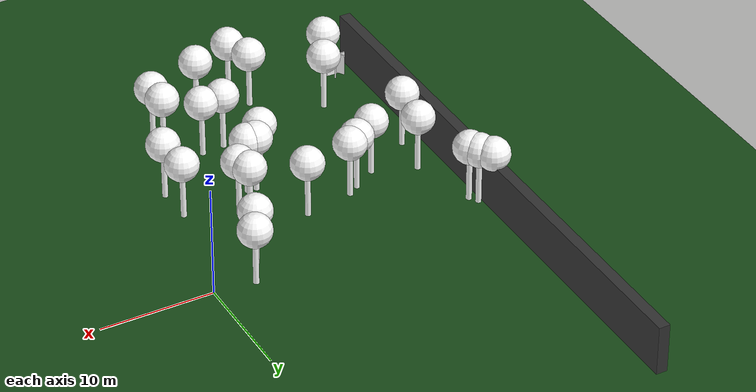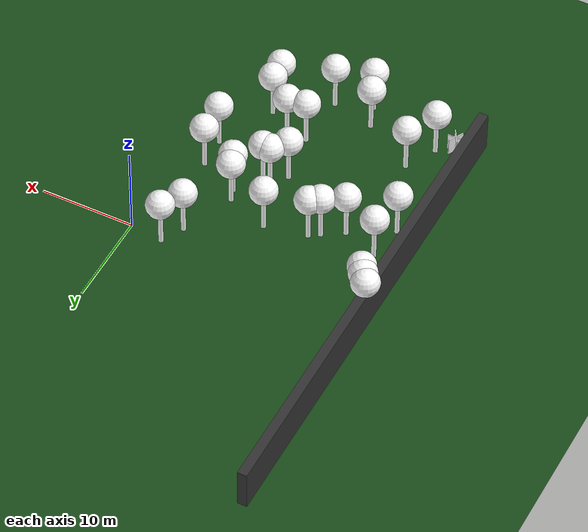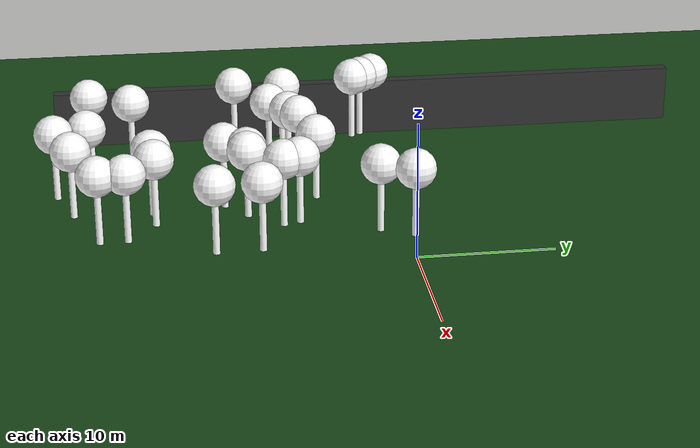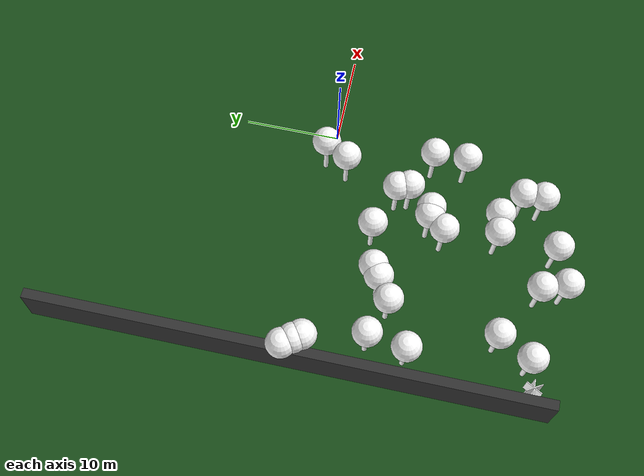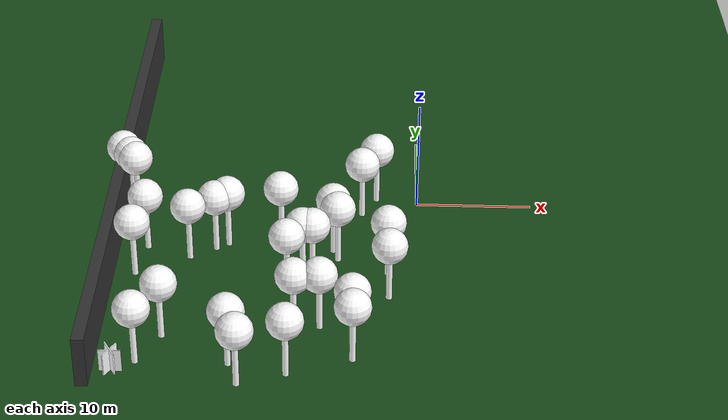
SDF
<sdf version="1.8">
 <world name="forest_world">
  <model name="fire_4">
   <pose>-23.95 -23.95 1.00 0 0 0.00</pose>
   <static>true</static>
   <link name="fire_link">
    <visual name="fire_4_fire_main_0">
     <geometry><box><size>1.80 0.10 2.00</size></box></geometry>
     <material>
      <ambient>0.7 0.35 0.0 1</ambient>
      <diffuse>1 1 1 1</diffuse>
      <specular>0 0 0 1</specular>
      <emissive>0 0 0 1</emissive>
      <pbr>
       <metal><albedo_map>textures/fire.png</albedo_map><metalness>0.0</metalness><roughness>0.6</roughness></metal>
      </pbr>
     </material>
     <transparency>0.0</transparency>
     <cast_shadows>false</cast_shadows>
    </visual>
    <visual name="fire_4_fire_60_1">
     <pose>0.00 0.00 0.10 0 0 1.05</pose>
     <geometry><box><size>1.80 0.10 2.00</size></box></geometry>
     <material>
      <ambient>0.7 0.35 0.0 1</ambient>
      <diffuse>1 1 1 1</diffuse>
      <specular>0 0 0 1</specular>
      <emissive>0 0 0 1</emissive>
      <pbr>
       <metal><albedo_map>textures/fire.png</albedo_map><metalness>0.0</metalness><roughness>0.6</roughness></metal>
      </pbr>
     </material>
     <transparency>0.0</transparency>
     <cast_shadows>false</cast_shadows>
    </visual>
    <visual name="fire_4_fire_120_2">
     <pose>0.00 0.00 0.20 0 0 2.09</pose>
     <geometry><box><size>1.80 0.10 2.00</size></box></geometry>
     <material>
      <ambient>0.7 0.35 0.0 1</ambient>
      <diffuse>1 1 1 1</diffuse>
      <specular>0 0 0 1</specular>
      <emissive>0 0 0 1</emissive>
      <pbr>
       <metal><albedo_map>textures/fire.png</albedo_map><metalness>0.0</metalness><roughness>0.6</roughness></metal>
      </pbr>
     </material>
     <transparency>0.0</transparency>
     <cast_shadows>false</cast_shadows>
    </visual>
    <light type="point" name="fire_4_light_0">
     <pose>0.40 0.00 0.50 0 0 0</pose>
     <diffuse>1.0 0.7 0.3 1</diffuse>
     <specular>1.0 0.8 0.3 1</specular>
     <intensity>2</intensity>
     <attenuation>
      <range>2</range>
      <constant>0.1</constant>
      <linear>0.05</linear>
      <quadratic>0.02</quadratic>
     </attenuation>
     <cast_shadows>false</cast_shadows>
    </light>
    <light type="point" name="fire_4_light_1">
     <pose>-0.20 0.35 0.50 0 0 0</pose>
     <diffuse>1.0 0.7 0.3 1</diffuse>
     <specular>1.0 0.8 0.3 1</specular>
     <intensity>2</intensity>
     <attenuation>
      <range>2</range>
      <constant>0.1</constant>
      <linear>0.05</linear>
      <quadratic>0.02</quadratic>
     </attenuation>
     <cast_shadows>false</cast_shadows>
    </light>
    <light type="point" name="fire_4_light_2">
     <pose>-0.20 -0.35 0.50 0 0 0</pose>
     <diffuse>1.0 0.7 0.3 1</diffuse>
     <specular>1.0 0.8 0.3 1</specular>
     <intensity>2</intensity>
     <attenuation>
      <range>2</range>
      <constant>0.1</constant>
      <linear>0.05</linear>
      <quadratic>0.02</quadratic>
     </attenuation>
     <cast_shadows>false</cast_shadows>
    </light>
   </link>
   <plugin filename="libignition-gazebo-pose-publisher-system.so" name="ignition::gazebo::systems::PosePublisher">
    <frame_id>world</frame_id>
    <publish_link_pose>true</publish_link_pose>
    <use_pose_vector_msg>true</use_pose_vector_msg>
    <static_publisher>true</static_publisher>
    <static_update_frequency>1</static_update_frequency>
   </plugin>
  </model>
  <model name="tree_simple448">
   <static>1</static>
   <link name="link">
    <pose>0 0 0.1 0 -0 0</pose>
    <collision name="collision_trunk">
     <pose>0 0 2 0 -0 0</pose>
     <geometry><cylinder><radius>0.25</radius><length>4</length></cylinder></geometry>
    </collision>
    <collision name="collision_treetop">
     <pose>0 0 5.2 0 -0 0</pose>
     <geometry><sphere><radius>1.5</radius></sphere></geometry>
    </collision>
    <visual name="trunk">
     <pose>0 0 2 0 -0 0</pose>
     <geometry><cylinder><radius>0.25</radius><length>4</length></cylinder></geometry>
     <material>
      <ambient>0.5 0.5 0.5 1</ambient>
      <diffuse>1.0 1.0 1.0 1</diffuse>
      <specular>0.0 0.0 0.0 1</specular>
      <pbr>
       <metal>
        <albedo_map>../worlds/textures/tree_simple_trunk.jpg</albedo_map>
        <metalness>0.0</metalness>
        <roughness>0.8</roughness>
       </metal>
      </pbr>
     </material>
    </visual>
    <visual name="treetop">
     <pose>0 0 5.2 0 -0 0</pose>
     <geometry><sphere><radius>1.5</radius></sphere></geometry>
     <material>
      <ambient>0.5 0.5 0.5 1</ambient>
      <diffuse>1.0 1.0 1.0 1</diffuse>
      <specular>0.0 0.0 0.0 1</specular>
      <pbr>
       <metal>
        <albedo_map>../worlds/textures/tree_simple_treetop.jpg</albedo_map>
        <metalness>0.0</metalness>
        <roughness>0.9</roughness>
       </metal>
      </pbr>
     </material>
    </visual>
   </link>
   <pose>-24.5519753109 -1.42546954192 0 0 -0 0</pose>
  </model>
  <model name="tree_simple418">
   <static>1</static>
   <link name="link">
    <pose>0 0 0.1 0 -0 0</pose>
    <collision name="collision_trunk">
     <pose>0 0 2 0 -0 0</pose>
     <geometry><cylinder><radius>0.25</radius><length>4</length></cylinder></geometry>
    </collision>
    <collision name="collision_treetop">
     <pose>0 0 5.2 0 -0 0</pose>
     <geometry><sphere><radius>1.5</radius></sphere></geometry>
    </collision>
    <visual name="trunk">
     <pose>0 0 2 0 -0 0</pose>
     <geometry><cylinder><radius>0.25</radius><length>4</length></cylinder></geometry>
     <material>
      <ambient>0.5 0.5 0.5 1</ambient>
      <diffuse>1.0 1.0 1.0 1</diffuse>
      <specular>0.0 0.0 0.0 1</specular>
      <pbr>
       <metal>
        <albedo_map>../worlds/textures/tree_simple_trunk.jpg</albedo_map>
        <metalness>0.0</metalness>
        <roughness>0.8</roughness>
       </metal>
      </pbr>
     </material>
    </visual>
    <visual name="treetop">
     <pose>0 0 5.2 0 -0 0</pose>
     <geometry><sphere><radius>1.5</radius></sphere></geometry>
     <material>
      <ambient>0.5 0.5 0.5 1</ambient>
      <diffuse>1.0 1.0 1.0 1</diffuse>
      <specular>0.0 0.0 0.0 1</specular>
      <pbr>
       <metal>
        <albedo_map>../worlds/textures/tree_simple_treetop.jpg</albedo_map>
        <metalness>0.0</metalness>
        <roughness>0.9</roughness>
       </metal>
      </pbr>
     </material>
    </visual>
   </link>
   <pose>-22.9841604277 -7.39292719752 0 0 -0 0</pose>
  </model>
  <model name="tree_simple415">
   <static>1</static>
   <link name="link">
    <pose>0 0 0.1 0 -0 0</pose>
    <collision name="collision_trunk">
     <pose>0 0 2 0 -0 0</pose>
     <geometry><cylinder><radius>0.25</radius><length>4</length></cylinder></geometry>
    </collision>
    <collision name="collision_treetop">
     <pose>0 0 5.2 0 -0 0</pose>
     <geometry><sphere><radius>1.5</radius></sphere></geometry>
    </collision>
    <visual name="trunk">
     <pose>0 0 2 0 -0 0</pose>
     <geometry><cylinder><radius>0.25</radius><length>4</length></cylinder></geometry>
     <material>
      <ambient>0.5 0.5 0.5 1</ambient>
      <diffuse>1.0 1.0 1.0 1</diffuse>
      <specular>0.0 0.0 0.0 1</specular>
      <pbr>
       <metal>
        <albedo_map>../worlds/textures/tree_simple_trunk.jpg</albedo_map>
        <metalness>0.0</metalness>
        <roughness>0.8</roughness>
       </metal>
      </pbr>
     </material>
    </visual>
    <visual name="treetop">
     <pose>0 0 5.2 0 -0 0</pose>
     <geometry><sphere><radius>1.5</radius></sphere></geometry>
     <material>
      <ambient>0.5 0.5 0.5 1</ambient>
      <diffuse>1.0 1.0 1.0 1</diffuse>
      <specular>0.0 0.0 0.0 1</specular>
      <pbr>
       <metal>
        <albedo_map>../worlds/textures/tree_simple_treetop.jpg</albedo_map>
        <metalness>0.0</metalness>
        <roughness>0.9</roughness>
       </metal>
      </pbr>
     </material>
    </visual>
   </link>
   <pose>-11.6355979465 -5.8252534874 0 0 -0 0</pose>
  </model>
  <model name="tree_simple395">
   <static>1</static>
   <link name="link">
    <pose>0 0 0.1 0 -0 0</pose>
    <collision name="collision_trunk">
     <pose>0 0 2 0 -0 0</pose>
     <geometry><cylinder><radius>0.25</radius><length>4</length></cylinder></geometry>
    </collision>
    <collision name="collision_treetop">
     <pose>0 0 5.2 0 -0 0</pose>
     <geometry><sphere><radius>1.5</radius></sphere></geometry>
    </collision>
    <visual name="trunk">
     <pose>0 0 2 0 -0 0</pose>
     <geometry><cylinder><radius>0.25</radius><length>4</length></cylinder></geometry>
     <material>
      <ambient>0.5 0.5 0.5 1</ambient>
      <diffuse>1.0 1.0 1.0 1</diffuse>
      <specular>0.0 0.0 0.0 1</specular>
      <pbr>
       <metal>
        <albedo_map>../worlds/textures/tree_simple_trunk.jpg</albedo_map>
        <metalness>0.0</metalness>
        <roughness>0.8</roughness>
       </metal>
      </pbr>
     </material>
    </visual>
    <visual name="treetop">
     <pose>0 0 5.2 0 -0 0</pose>
     <geometry><sphere><radius>1.5</radius></sphere></geometry>
     <material>
      <ambient>0.5 0.5 0.5 1</ambient>
      <diffuse>1.0 1.0 1.0 1</diffuse>
      <specular>0.0 0.0 0.0 1</specular>
      <pbr>
       <metal>
        <albedo_map>../worlds/textures/tree_simple_treetop.jpg</albedo_map>
        <metalness>0.0</metalness>
        <roughness>0.9</roughness>
       </metal>
      </pbr>
     </material>
    </visual>
   </link>
   <pose>-14.8909068885 -23.0244241553 0 0 -0 0</pose>
  </model>
  <model name="tree_simple392">
   <static>1</static>
   <link name="link">
    <pose>0 0 0.1 0 -0 0</pose>
    <collision name="collision_trunk">
     <pose>0 0 2 0 -0 0</pose>
     <geometry><cylinder><radius>0.25</radius><length>4</length></cylinder></geometry>
    </collision>
    <collision name="collision_treetop">
     <pose>0 0 5.2 0 -0 0</pose>
     <geometry><sphere><radius>1.5</radius></sphere></geometry>
    </collision>
    <visual name="trunk">
     <pose>0 0 2 0 -0 0</pose>
     <geometry><cylinder><radius>0.25</radius><length>4</length></cylinder></geometry>
     <material>
      <ambient>0.5 0.5 0.5 1</ambient>
      <diffuse>1.0 1.0 1.0 1</diffuse>
      <specular>0.0 0.0 0.0 1</specular>
      <pbr>
       <metal>
        <albedo_map>../worlds/textures/tree_simple_trunk.jpg</albedo_map>
        <metalness>0.0</metalness>
        <roughness>0.8</roughness>
       </metal>
      </pbr>
     </material>
    </visual>
    <visual name="treetop">
     <pose>0 0 5.2 0 -0 0</pose>
     <geometry><sphere><radius>1.5</radius></sphere></geometry>
     <material>
      <ambient>0.5 0.5 0.5 1</ambient>
      <diffuse>1.0 1.0 1.0 1</diffuse>
      <specular>0.0 0.0 0.0 1</specular>
      <pbr>
       <metal>
        <albedo_map>../worlds/textures/tree_simple_treetop.jpg</albedo_map>
        <metalness>0.0</metalness>
        <roughness>0.9</roughness>
       </metal>
      </pbr>
     </material>
    </visual>
   </link>
   <pose>-2.49227665262 -10.6347787598 0 0 -0 0</pose>
  </model>
  <model name="tree_simple386">
   <static>1</static>
   <link name="link">
    <pose>0 0 0.1 0 -0 0</pose>
    <collision name="collision_trunk">
     <pose>0 0 2 0 -0 0</pose>
     <geometry><cylinder><radius>0.25</radius><length>4</length></cylinder></geometry>
    </collision>
    <collision name="collision_treetop">
     <pose>0 0 5.2 0 -0 0</pose>
     <geometry><sphere><radius>1.5</radius></sphere></geometry>
    </collision>
    <visual name="trunk">
     <pose>0 0 2 0 -0 0</pose>
     <geometry><cylinder><radius>0.25</radius><length>4</length></cylinder></geometry>
     <material>
      <ambient>0.5 0.5 0.5 1</ambient>
      <diffuse>1.0 1.0 1.0 1</diffuse>
      <specular>0.0 0.0 0.0 1</specular>
      <pbr>
       <metal>
        <albedo_map>../worlds/textures/tree_simple_trunk.jpg</albedo_map>
        <metalness>0.0</metalness>
        <roughness>0.8</roughness>
       </metal>
      </pbr>
     </material>
    </visual>
    <visual name="treetop">
     <pose>0 0 5.2 0 -0 0</pose>
     <geometry><sphere><radius>1.5</radius></sphere></geometry>
     <material>
      <ambient>0.5 0.5 0.5 1</ambient>
      <diffuse>1.0 1.0 1.0 1</diffuse>
      <specular>0.0 0.0 0.0 1</specular>
      <pbr>
       <metal>
        <albedo_map>../worlds/textures/tree_simple_treetop.jpg</albedo_map>
        <metalness>0.0</metalness>
        <roughness>0.9</roughness>
       </metal>
      </pbr>
     </material>
    </visual>
   </link>
   <pose>-19.2490777258 -8.77456979873 0 0 -0 0</pose>
  </model>
  <model name="tree_simple376">
   <static>1</static>
   <link name="link">
    <pose>0 0 0.1 0 -0 0</pose>
    <collision name="collision_trunk">
     <pose>0 0 2 0 -0 0</pose>
     <geometry><cylinder><radius>0.25</radius><length>4</length></cylinder></geometry>
    </collision>
    <collision name="collision_treetop">
     <pose>0 0 5.2 0 -0 0</pose>
     <geometry><sphere><radius>1.5</radius></sphere></geometry>
    </collision>
    <visual name="trunk">
     <pose>0 0 2 0 -0 0</pose>
     <geometry><cylinder><radius>0.25</radius><length>4</length></cylinder></geometry>
     <material>
      <ambient>0.5 0.5 0.5 1</ambient>
      <diffuse>1.0 1.0 1.0 1</diffuse>
      <specular>0.0 0.0 0.0 1</specular>
      <pbr>
       <metal>
        <albedo_map>../worlds/textures/tree_simple_trunk.jpg</albedo_map>
        <metalness>0.0</metalness>
        <roughness>0.8</roughness>
       </metal>
      </pbr>
     </material>
    </visual>
    <visual name="treetop">
     <pose>0 0 5.2 0 -0 0</pose>
     <geometry><sphere><radius>1.5</radius></sphere></geometry>
     <material>
      <ambient>0.5 0.5 0.5 1</ambient>
      <diffuse>1.0 1.0 1.0 1</diffuse>
      <specular>0.0 0.0 0.0 1</specular>
      <pbr>
       <metal>
        <albedo_map>../worlds/textures/tree_simple_treetop.jpg</albedo_map>
        <metalness>0.0</metalness>
        <roughness>0.9</roughness>
       </metal>
      </pbr>
     </material>
    </visual>
   </link>
   <pose>-3.57495660346 0.511559407044 0 0 -0 0</pose>
  </model>
  <model name="tree_simple364">
   <static>1</static>
   <link name="link">
    <pose>0 0 0.1 0 -0 0</pose>
    <collision name="collision_trunk">
     <pose>0 0 2 0 -0 0</pose>
     <geometry><cylinder><radius>0.25</radius><length>4</length></cylinder></geometry>
    </collision>
    <collision name="collision_treetop">
     <pose>0 0 5.2 0 -0 0</pose>
     <geometry><sphere><radius>1.5</radius></sphere></geometry>
    </collision>
    <visual name="trunk">
     <pose>0 0 2 0 -0 0</pose>
     <geometry><cylinder><radius>0.25</radius><length>4</length></cylinder></geometry>
     <material>
      <ambient>0.5 0.5 0.5 1</ambient>
      <diffuse>1.0 1.0 1.0 1</diffuse>
      <specular>0.0 0.0 0.0 1</specular>
      <pbr>
       <metal>
        <albedo_map>../worlds/textures/tree_simple_trunk.jpg</albedo_map>
        <metalness>0.0</metalness>
        <roughness>0.8</roughness>
       </metal>
      </pbr>
     </material>
    </visual>
    <visual name="treetop">
     <pose>0 0 5.2 0 -0 0</pose>
     <geometry><sphere><radius>1.5</radius></sphere></geometry>
     <material>
      <ambient>0.5 0.5 0.5 1</ambient>
      <diffuse>1.0 1.0 1.0 1</diffuse>
      <specular>0.0 0.0 0.0 1</specular>
      <pbr>
       <metal>
        <albedo_map>../worlds/textures/tree_simple_treetop.jpg</albedo_map>
        <metalness>0.0</metalness>
        <roughness>0.9</roughness>
       </metal>
      </pbr>
     </material>
    </visual>
   </link>
   <pose>-5.23612591395 -20.1562951187 0 0 -0 0</pose>
  </model>
  <model name="tree_simple349">
   <static>1</static>
   <link name="link">
    <pose>0 0 0.1 0 -0 0</pose>
    <collision name="collision_trunk">
     <pose>0 0 2 0 -0 0</pose>
     <geometry><cylinder><radius>0.25</radius><length>4</length></cylinder></geometry>
    </collision>
    <collision name="collision_treetop">
     <pose>0 0 5.2 0 -0 0</pose>
     <geometry><sphere><radius>1.5</radius></sphere></geometry>
    </collision>
    <visual name="trunk">
     <pose>0 0 2 0 -0 0</pose>
     <geometry><cylinder><radius>0.25</radius><length>4</length></cylinder></geometry>
     <material>
      <ambient>0.5 0.5 0.5 1</ambient>
      <diffuse>1.0 1.0 1.0 1</diffuse>
      <specular>0.0 0.0 0.0 1</specular>
      <pbr>
       <metal>
        <albedo_map>../worlds/textures/tree_simple_trunk.jpg</albedo_map>
        <metalness>0.0</metalness>
        <roughness>0.8</roughness>
       </metal>
      </pbr>
     </material>
    </visual>
    <visual name="treetop">
     <pose>0 0 5.2 0 -0 0</pose>
     <geometry><sphere><radius>1.5</radius></sphere></geometry>
     <material>
      <ambient>0.5 0.5 0.5 1</ambient>
      <diffuse>1.0 1.0 1.0 1</diffuse>
      <specular>0.0 0.0 0.0 1</specular>
      <pbr>
       <metal>
        <albedo_map>../worlds/textures/tree_simple_treetop.jpg</albedo_map>
        <metalness>0.0</metalness>
        <roughness>0.9</roughness>
       </metal>
      </pbr>
     </material>
    </visual>
   </link>
   <pose>-20.4686708935 -19.6389151122 0 0 -0 0</pose>
  </model>
  <model name="tree_simple347">
   <static>1</static>
   <link name="link">
    <pose>0 0 0.1 0 -0 0</pose>
    <collision name="collision_trunk">
     <pose>0 0 2 0 -0 0</pose>
     <geometry><cylinder><radius>0.25</radius><length>4</length></cylinder></geometry>
    </collision>
    <collision name="collision_treetop">
     <pose>0 0 5.2 0 -0 0</pose>
     <geometry><sphere><radius>1.5</radius></sphere></geometry>
    </collision>
    <visual name="trunk">
     <pose>0 0 2 0 -0 0</pose>
     <geometry><cylinder><radius>0.25</radius><length>4</length></cylinder></geometry>
     <material>
      <ambient>0.5 0.5 0.5 1</ambient>
      <diffuse>1.0 1.0 1.0 1</diffuse>
      <specular>0.0 0.0 0.0 1</specular>
      <pbr>
       <metal>
        <albedo_map>../worlds/textures/tree_simple_trunk.jpg</albedo_map>
        <metalness>0.0</metalness>
        <roughness>0.8</roughness>
       </metal>
      </pbr>
     </material>
    </visual>
    <visual name="treetop">
     <pose>0 0 5.2 0 -0 0</pose>
     <geometry><sphere><radius>1.5</radius></sphere></geometry>
     <material>
      <ambient>0.5 0.5 0.5 1</ambient>
      <diffuse>1.0 1.0 1.0 1</diffuse>
      <specular>0.0 0.0 0.0 1</specular>
      <pbr>
       <metal>
        <albedo_map>../worlds/textures/tree_simple_treetop.jpg</albedo_map>
        <metalness>0.0</metalness>
        <roughness>0.9</roughness>
       </metal>
      </pbr>
     </material>
    </visual>
   </link>
   <pose>-10.2981062424 -24.1175281228 0 0 -0 0</pose>
  </model>
  <model name="tree_simple322">
   <static>1</static>
   <link name="link">
    <pose>0 0 0.1 0 -0 0</pose>
    <collision name="collision_trunk">
     <pose>0 0 2 0 -0 0</pose>
     <geometry><cylinder><radius>0.25</radius><length>4</length></cylinder></geometry>
    </collision>
    <collision name="collision_treetop">
     <pose>0 0 5.2 0 -0 0</pose>
     <geometry><sphere><radius>1.5</radius></sphere></geometry>
    </collision>
    <visual name="trunk">
     <pose>0 0 2 0 -0 0</pose>
     <geometry><cylinder><radius>0.25</radius><length>4</length></cylinder></geometry>
     <material>
      <ambient>0.5 0.5 0.5 1</ambient>
      <diffuse>1.0 1.0 1.0 1</diffuse>
      <specular>0.0 0.0 0.0 1</specular>
      <pbr>
       <metal>
        <albedo_map>../worlds/textures/tree_simple_trunk.jpg</albedo_map>
        <metalness>0.0</metalness>
        <roughness>0.8</roughness>
       </metal>
      </pbr>
     </material>
    </visual>
    <visual name="treetop">
     <pose>0 0 5.2 0 -0 0</pose>
     <geometry><sphere><radius>1.5</radius></sphere></geometry>
     <material>
      <ambient>0.5 0.5 0.5 1</ambient>
      <diffuse>1.0 1.0 1.0 1</diffuse>
      <specular>0.0 0.0 0.0 1</specular>
      <pbr>
       <metal>
        <albedo_map>../worlds/textures/tree_simple_treetop.jpg</albedo_map>
        <metalness>0.0</metalness>
        <roughness>0.9</roughness>
       </metal>
      </pbr>
     </material>
    </visual>
   </link>
   <pose>-10.7837387112 -12.8598856653 0 0 -0 0</pose>
  </model>
  <model name="tree_simple303">
   <static>1</static>
   <link name="link">
    <pose>0 0 0.1 0 -0 0</pose>
    <collision name="collision_trunk">
     <pose>0 0 2 0 -0 0</pose>
     <geometry><cylinder><radius>0.25</radius><length>4</length></cylinder></geometry>
    </collision>
    <collision name="collision_treetop">
     <pose>0 0 5.2 0 -0 0</pose>
     <geometry><sphere><radius>1.5</radius></sphere></geometry>
    </collision>
    <visual name="trunk">
     <pose>0 0 2 0 -0 0</pose>
     <geometry><cylinder><radius>0.25</radius><length>4</length></cylinder></geometry>
     <material>
      <ambient>0.5 0.5 0.5 1</ambient>
      <diffuse>1.0 1.0 1.0 1</diffuse>
      <specular>0.0 0.0 0.0 1</specular>
      <pbr>
       <metal>
        <albedo_map>../worlds/textures/tree_simple_trunk.jpg</albedo_map>
        <metalness>0.0</metalness>
        <roughness>0.8</roughness>
       </metal>
      </pbr>
     </material>
    </visual>
    <visual name="treetop">
     <pose>0 0 5.2 0 -0 0</pose>
     <geometry><sphere><radius>1.5</radius></sphere></geometry>
     <material>
      <ambient>0.5 0.5 0.5 1</ambient>
      <diffuse>1.0 1.0 1.0 1</diffuse>
      <specular>0.0 0.0 0.0 1</specular>
      <pbr>
       <metal>
        <albedo_map>../worlds/textures/tree_simple_treetop.jpg</albedo_map>
        <metalness>0.0</metalness>
        <roughness>0.9</roughness>
       </metal>
      </pbr>
     </material>
    </visual>
   </link>
   <pose>-9.56094886719 -11.2139048457 0 0 -0 0</pose>
  </model>
  <model name="tree_simple279">
   <static>1</static>
   <link name="link">
    <pose>0 0 0.1 0 -0 0</pose>
    <collision name="collision_trunk">
     <pose>0 0 2 0 -0 0</pose>
     <geometry><cylinder><radius>0.25</radius><length>4</length></cylinder></geometry>
    </collision>
    <collision name="collision_treetop">
     <pose>0 0 5.2 0 -0 0</pose>
     <geometry><sphere><radius>1.5</radius></sphere></geometry>
    </collision>
    <visual name="trunk">
     <pose>0 0 2 0 -0 0</pose>
     <geometry><cylinder><radius>0.25</radius><length>4</length></cylinder></geometry>
     <material>
      <ambient>0.5 0.5 0.5 1</ambient>
      <diffuse>1.0 1.0 1.0 1</diffuse>
      <specular>0.0 0.0 0.0 1</specular>
      <pbr>
       <metal>
        <albedo_map>../worlds/textures/tree_simple_trunk.jpg</albedo_map>
        <metalness>0.0</metalness>
        <roughness>0.8</roughness>
       </metal>
      </pbr>
     </material>
    </visual>
    <visual name="treetop">
     <pose>0 0 5.2 0 -0 0</pose>
     <geometry><sphere><radius>1.5</radius></sphere></geometry>
     <material>
      <ambient>0.5 0.5 0.5 1</ambient>
      <diffuse>1.0 1.0 1.0 1</diffuse>
      <specular>0.0 0.0 0.0 1</specular>
      <pbr>
       <metal>
        <albedo_map>../worlds/textures/tree_simple_treetop.jpg</albedo_map>
        <metalness>0.0</metalness>
        <roughness>0.9</roughness>
       </metal>
      </pbr>
     </material>
    </visual>
   </link>
   <pose>-25.0449823603 -0.682470499347 0 0 -0 0</pose>
  </model>
  <model name="tree_simple268">
   <static>1</static>
   <link name="link">
    <pose>0 0 0.1 0 -0 0</pose>
    <collision name="collision_trunk">
     <pose>0 0 2 0 -0 0</pose>
     <geometry><cylinder><radius>0.25</radius><length>4</length></cylinder></geometry>
    </collision>
    <collision name="collision_treetop">
     <pose>0 0 5.2 0 -0 0</pose>
     <geometry><sphere><radius>1.5</radius></sphere></geometry>
    </collision>
    <visual name="trunk">
     <pose>0 0 2 0 -0 0</pose>
     <geometry><cylinder><radius>0.25</radius><length>4</length></cylinder></geometry>
     <material>
      <ambient>0.5 0.5 0.5 1</ambient>
      <diffuse>1.0 1.0 1.0 1</diffuse>
      <specular>0.0 0.0 0.0 1</specular>
      <pbr>
       <metal>
        <albedo_map>../worlds/textures/tree_simple_trunk.jpg</albedo_map>
        <metalness>0.0</metalness>
        <roughness>0.8</roughness>
       </metal>
      </pbr>
     </material>
    </visual>
    <visual name="treetop">
     <pose>0 0 5.2 0 -0 0</pose>
     <geometry><sphere><radius>1.5</radius></sphere></geometry>
     <material>
      <ambient>0.5 0.5 0.5 1</ambient>
      <diffuse>1.0 1.0 1.0 1</diffuse>
      <specular>0.0 0.0 0.0 1</specular>
      <pbr>
       <metal>
        <albedo_map>../worlds/textures/tree_simple_treetop.jpg</albedo_map>
        <metalness>0.0</metalness>
        <roughness>0.9</roughness>
       </metal>
      </pbr>
     </material>
    </visual>
   </link>
   <pose>-9.9717965144 -18.2645258901 0 0 -0 0</pose>
  </model>
  <model name="tree_simple253">
   <static>1</static>
   <link name="link">
    <pose>0 0 0.1 0 -0 0</pose>
    <collision name="collision_trunk">
     <pose>0 0 2 0 -0 0</pose>
     <geometry><cylinder><radius>0.25</radius><length>4</length></cylinder></geometry>
    </collision>
    <collision name="collision_treetop">
     <pose>0 0 5.2 0 -0 0</pose>
     <geometry><sphere><radius>1.5</radius></sphere></geometry>
    </collision>
    <visual name="trunk">
     <pose>0 0 2 0 -0 0</pose>
     <geometry><cylinder><radius>0.25</radius><length>4</length></cylinder></geometry>
     <material>
      <ambient>0.5 0.5 0.5 1</ambient>
      <diffuse>1.0 1.0 1.0 1</diffuse>
      <specular>0.0 0.0 0.0 1</specular>
      <pbr>
       <metal>
        <albedo_map>../worlds/textures/tree_simple_trunk.jpg</albedo_map>
        <metalness>0.0</metalness>
        <roughness>0.8</roughness>
       </metal>
      </pbr>
     </material>
    </visual>
    <visual name="treetop">
     <pose>0 0 5.2 0 -0 0</pose>
     <geometry><sphere><radius>1.5</radius></sphere></geometry>
     <material>
      <ambient>0.5 0.5 0.5 1</ambient>
      <diffuse>1.0 1.0 1.0 1</diffuse>
      <specular>0.0 0.0 0.0 1</specular>
      <pbr>
       <metal>
        <albedo_map>../worlds/textures/tree_simple_treetop.jpg</albedo_map>
        <metalness>0.0</metalness>
        <roughness>0.9</roughness>
       </metal>
      </pbr>
     </material>
    </visual>
   </link>
   <pose>-6.71887912458 -8.7537434381 0 0 -0 0</pose>
  </model>
  <model name="tree_simple245">
   <static>1</static>
   <link name="link">
    <pose>0 0 0.1 0 -0 0</pose>
    <collision name="collision_trunk">
     <pose>0 0 2 0 -0 0</pose>
     <geometry><cylinder><radius>0.25</radius><length>4</length></cylinder></geometry>
    </collision>
    <collision name="collision_treetop">
     <pose>0 0 5.2 0 -0 0</pose>
     <geometry><sphere><radius>1.5</radius></sphere></geometry>
    </collision>
    <visual name="trunk">
     <pose>0 0 2 0 -0 0</pose>
     <geometry><cylinder><radius>0.25</radius><length>4</length></cylinder></geometry>
     <material>
      <ambient>0.5 0.5 0.5 1</ambient>
      <diffuse>1.0 1.0 1.0 1</diffuse>
      <specular>0.0 0.0 0.0 1</specular>
      <pbr>
       <metal>
        <albedo_map>../worlds/textures/tree_simple_trunk.jpg</albedo_map>
        <metalness>0.0</metalness>
        <roughness>0.8</roughness>
       </metal>
      </pbr>
     </material>
    </visual>
    <visual name="treetop">
     <pose>0 0 5.2 0 -0 0</pose>
     <geometry><sphere><radius>1.5</radius></sphere></geometry>
     <material>
      <ambient>0.5 0.5 0.5 1</ambient>
      <diffuse>1.0 1.0 1.0 1</diffuse>
      <specular>0.0 0.0 0.0 1</specular>
      <pbr>
       <metal>
        <albedo_map>../worlds/textures/tree_simple_treetop.jpg</albedo_map>
        <metalness>0.0</metalness>
        <roughness>0.9</roughness>
       </metal>
      </pbr>
     </material>
    </visual>
   </link>
   <pose>-25.7973722527 0.315231770046 0 0 -0 0</pose>
  </model>
  <model name="tree_simple234">
   <static>1</static>
   <link name="link">
    <pose>0 0 0.1 0 -0 0</pose>
    <collision name="collision_trunk">
     <pose>0 0 2 0 -0 0</pose>
     <geometry><cylinder><radius>0.25</radius><length>4</length></cylinder></geometry>
    </collision>
    <collision name="collision_treetop">
     <pose>0 0 5.2 0 -0 0</pose>
     <geometry><sphere><radius>1.5</radius></sphere></geometry>
    </collision>
    <visual name="trunk">
     <pose>0 0 2 0 -0 0</pose>
     <geometry><cylinder><radius>0.25</radius><length>4</length></cylinder></geometry>
     <material>
      <ambient>0.5 0.5 0.5 1</ambient>
      <diffuse>1.0 1.0 1.0 1</diffuse>
      <specular>0.0 0.0 0.0 1</specular>
      <pbr>
       <metal>
        <albedo_map>../worlds/textures/tree_simple_trunk.jpg</albedo_map>
        <metalness>0.0</metalness>
        <roughness>0.8</roughness>
       </metal>
      </pbr>
     </material>
    </visual>
    <visual name="treetop">
     <pose>0 0 5.2 0 -0 0</pose>
     <geometry><sphere><radius>1.5</radius></sphere></geometry>
     <material>
      <ambient>0.5 0.5 0.5 1</ambient>
      <diffuse>1.0 1.0 1.0 1</diffuse>
      <specular>0.0 0.0 0.0 1</specular>
      <pbr>
       <metal>
        <albedo_map>../worlds/textures/tree_simple_treetop.jpg</albedo_map>
        <metalness>0.0</metalness>
        <roughness>0.9</roughness>
       </metal>
      </pbr>
     </material>
    </visual>
   </link>
   <pose>-7.13671903639 -7.51188908491 0 0 -0 0</pose>
  </model>
  <model name="tree_simple201">
   <static>1</static>
   <link name="link">
    <pose>0 0 0.1 0 -0 0</pose>
    <collision name="collision_trunk">
     <pose>0 0 2 0 -0 0</pose>
     <geometry><cylinder><radius>0.25</radius><length>4</length></cylinder></geometry>
    </collision>
    <collision name="collision_treetop">
     <pose>0 0 5.2 0 -0 0</pose>
     <geometry><sphere><radius>1.5</radius></sphere></geometry>
    </collision>
    <visual name="trunk">
     <pose>0 0 2 0 -0 0</pose>
     <geometry><cylinder><radius>0.25</radius><length>4</length></cylinder></geometry>
     <material>
      <ambient>0.5 0.5 0.5 1</ambient>
      <diffuse>1.0 1.0 1.0 1</diffuse>
      <specular>0.0 0.0 0.0 1</specular>
      <pbr>
       <metal>
        <albedo_map>../worlds/textures/tree_simple_trunk.jpg</albedo_map>
        <metalness>0.0</metalness>
        <roughness>0.8</roughness>
       </metal>
      </pbr>
     </material>
    </visual>
    <visual name="treetop">
     <pose>0 0 5.2 0 -0 0</pose>
     <geometry><sphere><radius>1.5</radius></sphere></geometry>
     <material>
      <ambient>0.5 0.5 0.5 1</ambient>
      <diffuse>1.0 1.0 1.0 1</diffuse>
      <specular>0.0 0.0 0.0 1</specular>
      <pbr>
       <metal>
        <albedo_map>../worlds/textures/tree_simple_treetop.jpg</albedo_map>
        <metalness>0.0</metalness>
        <roughness>0.9</roughness>
       </metal>
      </pbr>
     </material>
    </visual>
   </link>
   <pose>-16.1062713361 -6.72563548396 0 0 -0 0</pose>
  </model>
  <model name="tree_simple200">
   <static>1</static>
   <link name="link">
    <pose>0 0 0.1 0 -0 0</pose>
    <collision name="collision_trunk">
     <pose>0 0 2 0 -0 0</pose>
     <geometry><cylinder><radius>0.25</radius><length>4</length></cylinder></geometry>
    </collision>
    <collision name="collision_treetop">
     <pose>0 0 5.2 0 -0 0</pose>
     <geometry><sphere><radius>1.5</radius></sphere></geometry>
    </collision>
    <visual name="trunk">
     <pose>0 0 2 0 -0 0</pose>
     <geometry><cylinder><radius>0.25</radius><length>4</length></cylinder></geometry>
     <material>
      <ambient>0.5 0.5 0.5 1</ambient>
      <diffuse>1.0 1.0 1.0 1</diffuse>
      <specular>0.0 0.0 0.0 1</specular>
      <pbr>
       <metal>
        <albedo_map>../worlds/textures/tree_simple_trunk.jpg</albedo_map>
        <metalness>0.0</metalness>
        <roughness>0.8</roughness>
       </metal>
      </pbr>
     </material>
    </visual>
    <visual name="treetop">
     <pose>0 0 5.2 0 -0 0</pose>
     <geometry><sphere><radius>1.5</radius></sphere></geometry>
     <material>
      <ambient>0.5 0.5 0.5 1</ambient>
      <diffuse>1.0 1.0 1.0 1</diffuse>
      <specular>0.0 0.0 0.0 1</specular>
      <pbr>
       <metal>
        <albedo_map>../worlds/textures/tree_simple_treetop.jpg</albedo_map>
        <metalness>0.0</metalness>
        <roughness>0.9</roughness>
       </metal>
      </pbr>
     </material>
    </visual>
   </link>
   <pose>-22.1853775811 -22.9371972628 0 0 -0 0</pose>
  </model>
  <model name="tree_simple194">
   <static>1</static>
   <link name="link">
    <pose>0 0 0.1 0 -0 0</pose>
    <collision name="collision_trunk">
     <pose>0 0 2 0 -0 0</pose>
     <geometry><cylinder><radius>0.25</radius><length>4</length></cylinder></geometry>
    </collision>
    <collision name="collision_treetop">
     <pose>0 0 5.2 0 -0 0</pose>
     <geometry><sphere><radius>1.5</radius></sphere></geometry>
    </collision>
    <visual name="trunk">
     <pose>0 0 2 0 -0 0</pose>
     <geometry><cylinder><radius>0.25</radius><length>4</length></cylinder></geometry>
     <material>
      <ambient>0.5 0.5 0.5 1</ambient>
      <diffuse>1.0 1.0 1.0 1</diffuse>
      <specular>0.0 0.0 0.0 1</specular>
      <pbr>
       <metal>
        <albedo_map>../worlds/textures/tree_simple_trunk.jpg</albedo_map>
        <metalness>0.0</metalness>
        <roughness>0.8</roughness>
       </metal>
      </pbr>
     </material>
    </visual>
    <visual name="treetop">
     <pose>0 0 5.2 0 -0 0</pose>
     <geometry><sphere><radius>1.5</radius></sphere></geometry>
     <material>
      <ambient>0.5 0.5 0.5 1</ambient>
      <diffuse>1.0 1.0 1.0 1</diffuse>
      <specular>0.0 0.0 0.0 1</specular>
      <pbr>
       <metal>
        <albedo_map>../worlds/textures/tree_simple_treetop.jpg</albedo_map>
        <metalness>0.0</metalness>
        <roughness>0.9</roughness>
       </metal>
      </pbr>
     </material>
    </visual>
   </link>
   <pose>-23.6189562951 -11.2622665902 0 0 -0 0</pose>
  </model>
  <model name="tree_simple155">
   <static>1</static>
   <link name="link">
    <pose>0 0 0.1 0 -0 0</pose>
    <collision name="collision_trunk">
     <pose>0 0 2 0 -0 0</pose>
     <geometry><cylinder><radius>0.25</radius><length>4</length></cylinder></geometry>
    </collision>
    <collision name="collision_treetop">
     <pose>0 0 5.2 0 -0 0</pose>
     <geometry><sphere><radius>1.5</radius></sphere></geometry>
    </collision>
    <visual name="trunk">
     <pose>0 0 2 0 -0 0</pose>
     <geometry><cylinder><radius>0.25</radius><length>4</length></cylinder></geometry>
     <material>
      <ambient>0.5 0.5 0.5 1</ambient>
      <diffuse>1.0 1.0 1.0 1</diffuse>
      <specular>0.0 0.0 0.0 1</specular>
      <pbr>
       <metal>
        <albedo_map>../worlds/textures/tree_simple_trunk.jpg</albedo_map>
        <metalness>0.0</metalness>
        <roughness>0.8</roughness>
       </metal>
      </pbr>
     </material>
    </visual>
    <visual name="treetop">
     <pose>0 0 5.2 0 -0 0</pose>
     <geometry><sphere><radius>1.5</radius></sphere></geometry>
     <material>
      <ambient>0.5 0.5 0.5 1</ambient>
      <diffuse>1.0 1.0 1.0 1</diffuse>
      <specular>0.0 0.0 0.0 1</specular>
      <pbr>
       <metal>
        <albedo_map>../worlds/textures/tree_simple_treetop.jpg</albedo_map>
        <metalness>0.0</metalness>
        <roughness>0.9</roughness>
       </metal>
      </pbr>
     </material>
    </visual>
   </link>
   <pose>-2.3717624472 -13.9733365428 0 0 -0 0</pose>
  </model>
  <model name="tree_simple138">
   <static>1</static>
   <link name="link">
    <pose>0 0 0.1 0 -0 0</pose>
    <collision name="collision_trunk">
     <pose>0 0 2 0 -0 0</pose>
     <geometry><cylinder><radius>0.25</radius><length>4</length></cylinder></geometry>
    </collision>
    <collision name="collision_treetop">
     <pose>0 0 5.2 0 -0 0</pose>
     <geometry><sphere><radius>1.5</radius></sphere></geometry>
    </collision>
    <visual name="trunk">
     <pose>0 0 2 0 -0 0</pose>
     <geometry><cylinder><radius>0.25</radius><length>4</length></cylinder></geometry>
     <material>
      <ambient>0.5 0.5 0.5 1</ambient>
      <diffuse>1.0 1.0 1.0 1</diffuse>
      <specular>0.0 0.0 0.0 1</specular>
      <pbr>
       <metal>
        <albedo_map>../worlds/textures/tree_simple_trunk.jpg</albedo_map>
        <metalness>0.0</metalness>
        <roughness>0.8</roughness>
       </metal>
      </pbr>
     </material>
    </visual>
    <visual name="treetop">
     <pose>0 0 5.2 0 -0 0</pose>
     <geometry><sphere><radius>1.5</radius></sphere></geometry>
     <material>
      <ambient>0.5 0.5 0.5 1</ambient>
      <diffuse>1.0 1.0 1.0 1</diffuse>
      <specular>0.0 0.0 0.0 1</specular>
      <pbr>
       <metal>
        <albedo_map>../worlds/textures/tree_simple_treetop.jpg</albedo_map>
        <metalness>0.0</metalness>
        <roughness>0.9</roughness>
       </metal>
      </pbr>
     </material>
    </visual>
   </link>
   <pose>-8.7404095495 -11.2488158501 0 0 -0 0</pose>
  </model>
  <model name="tree_simple89">
   <static>1</static>
   <link name="link">
    <pose>0 0 0.1 0 -0 0</pose>
    <collision name="collision_trunk">
     <pose>0 0 2 0 -0 0</pose>
     <geometry><cylinder><radius>0.25</radius><length>4</length></cylinder></geometry>
    </collision>
    <collision name="collision_treetop">
     <pose>0 0 5.2 0 -0 0</pose>
     <geometry><sphere><radius>1.5</radius></sphere></geometry>
    </collision>
    <visual name="trunk">
     <pose>0 0 2 0 -0 0</pose>
     <geometry><cylinder><radius>0.25</radius><length>4</length></cylinder></geometry>
     <material>
      <ambient>0.5 0.5 0.5 1</ambient>
      <diffuse>1.0 1.0 1.0 1</diffuse>
      <specular>0.0 0.0 0.0 1</specular>
      <pbr>
       <metal>
        <albedo_map>../worlds/textures/tree_simple_trunk.jpg</albedo_map>
        <metalness>0.0</metalness>
        <roughness>0.8</roughness>
       </metal>
      </pbr>
     </material>
    </visual>
    <visual name="treetop">
     <pose>0 0 5.2 0 -0 0</pose>
     <geometry><sphere><radius>1.5</radius></sphere></geometry>
     <material>
      <ambient>0.5 0.5 0.5 1</ambient>
      <diffuse>1.0 1.0 1.0 1</diffuse>
      <specular>0.0 0.0 0.0 1</specular>
      <pbr>
       <metal>
        <albedo_map>../worlds/textures/tree_simple_treetop.jpg</albedo_map>
        <metalness>0.0</metalness>
        <roughness>0.9</roughness>
       </metal>
      </pbr>
     </material>
    </visual>
   </link>
   <pose>-14.0445145291 -25.4354437198 0 0 -0 0</pose>
  </model>
  <model name="tree_simple64">
   <static>1</static>
   <link name="link">
    <pose>0 0 0.1 0 -0 0</pose>
    <collision name="collision_trunk">
     <pose>0 0 2 0 -0 0</pose>
     <geometry><cylinder><radius>0.25</radius><length>4</length></cylinder></geometry>
    </collision>
    <collision name="collision_treetop">
     <pose>0 0 5.2 0 -0 0</pose>
     <geometry><sphere><radius>1.5</radius></sphere></geometry>
    </collision>
    <visual name="trunk">
     <pose>0 0 2 0 -0 0</pose>
     <geometry><cylinder><radius>0.25</radius><length>4</length></cylinder></geometry>
     <material>
      <ambient>0.5 0.5 0.5 1</ambient>
      <diffuse>1.0 1.0 1.0 1</diffuse>
      <specular>0.0 0.0 0.0 1</specular>
      <pbr>
       <metal>
        <albedo_map>../worlds/textures/tree_simple_trunk.jpg</albedo_map>
        <metalness>0.0</metalness>
        <roughness>0.8</roughness>
       </metal>
      </pbr>
     </material>
    </visual>
    <visual name="treetop">
     <pose>0 0 5.2 0 -0 0</pose>
     <geometry><sphere><radius>1.5</radius></sphere></geometry>
     <material>
      <ambient>0.5 0.5 0.5 1</ambient>
      <diffuse>1.0 1.0 1.0 1</diffuse>
      <specular>0.0 0.0 0.0 1</specular>
      <pbr>
       <metal>
        <albedo_map>../worlds/textures/tree_simple_treetop.jpg</albedo_map>
        <metalness>0.0</metalness>
        <roughness>0.9</roughness>
       </metal>
      </pbr>
     </material>
    </visual>
   </link>
   <pose>-5.16461725533 -22.1747780475 0 0 -0 0</pose>
  </model>
  <model name="tree_simple60">
   <static>1</static>
   <link name="link">
    <pose>0 0 0.1 0 -0 0</pose>
    <collision name="collision_trunk">
     <pose>0 0 2 0 -0 0</pose>
     <geometry><cylinder><radius>0.25</radius><length>4</length></cylinder></geometry>
    </collision>
    <collision name="collision_treetop">
     <pose>0 0 5.2 0 -0 0</pose>
     <geometry><sphere><radius>1.5</radius></sphere></geometry>
    </collision>
    <visual name="trunk">
     <pose>0 0 2 0 -0 0</pose>
     <geometry><cylinder><radius>0.25</radius><length>4</length></cylinder></geometry>
     <material>
      <ambient>0.5 0.5 0.5 1</ambient>
      <diffuse>1.0 1.0 1.0 1</diffuse>
      <specular>0.0 0.0 0.0 1</specular>
      <pbr>
       <metal>
        <albedo_map>../worlds/textures/tree_simple_trunk.jpg</albedo_map>
        <metalness>0.0</metalness>
        <roughness>0.8</roughness>
       </metal>
      </pbr>
     </material>
    </visual>
    <visual name="treetop">
     <pose>0 0 5.2 0 -0 0</pose>
     <geometry><sphere><radius>1.5</radius></sphere></geometry>
     <material>
      <ambient>0.5 0.5 0.5 1</ambient>
      <diffuse>1.0 1.0 1.0 1</diffuse>
      <specular>0.0 0.0 0.0 1</specular>
      <pbr>
       <metal>
        <albedo_map>../worlds/textures/tree_simple_treetop.jpg</albedo_map>
        <metalness>0.0</metalness>
        <roughness>0.9</roughness>
       </metal>
      </pbr>
     </material>
    </visual>
   </link>
   <pose>-4.80911013023 -1.85604057601 0 0 -0 0</pose>
  </model>
  <model name="tree_simple37">
   <static>1</static>
   <link name="link">
    <pose>0 0 0.1 0 -0 0</pose>
    <collision name="collision_trunk">
     <pose>0 0 2 0 -0 0</pose>
     <geometry><cylinder><radius>0.25</radius><length>4</length></cylinder></geometry>
    </collision>
    <collision name="collision_treetop">
     <pose>0 0 5.2 0 -0 0</pose>
     <geometry><sphere><radius>1.5</radius></sphere></geometry>
    </collision>
    <visual name="trunk">
     <pose>0 0 2 0 -0 0</pose>
     <geometry><cylinder><radius>0.25</radius><length>4</length></cylinder></geometry>
     <material>
      <ambient>0.5 0.5 0.5 1</ambient>
      <diffuse>1.0 1.0 1.0 1</diffuse>
      <specular>0.0 0.0 0.0 1</specular>
      <pbr>
       <metal>
        <albedo_map>../worlds/textures/tree_simple_trunk.jpg</albedo_map>
        <metalness>0.0</metalness>
        <roughness>0.8</roughness>
       </metal>
      </pbr>
     </material>
    </visual>
    <visual name="treetop">
     <pose>0 0 5.2 0 -0 0</pose>
     <geometry><sphere><radius>1.5</radius></sphere></geometry>
     <material>
      <ambient>0.5 0.5 0.5 1</ambient>
      <diffuse>1.0 1.0 1.0 1</diffuse>
      <specular>0.0 0.0 0.0 1</specular>
      <pbr>
       <metal>
        <albedo_map>../worlds/textures/tree_simple_treetop.jpg</albedo_map>
        <metalness>0.0</metalness>
        <roughness>0.9</roughness>
       </metal>
      </pbr>
     </material>
    </visual>
   </link>
   <pose>-17.1200971999 -7.42377639458 0 0 -0 0</pose>
  </model>
  <model name="tree_simple18">
   <static>1</static>
   <link name="link">
    <pose>0 0 0.1 0 -0 0</pose>
    <collision name="collision_trunk">
     <pose>0 0 2 0 -0 0</pose>
     <geometry><cylinder><radius>0.25</radius><length>4</length></cylinder></geometry>
    </collision>
    <collision name="collision_treetop">
     <pose>0 0 5.2 0 -0 0</pose>
     <geometry><sphere><radius>1.5</radius></sphere></geometry>
    </collision>
    <visual name="trunk">
     <pose>0 0 2 0 -0 0</pose>
     <geometry><cylinder><radius>0.25</radius><length>4</length></cylinder></geometry>
     <material>
      <ambient>0.5 0.5 0.5 1</ambient>
      <diffuse>1.0 1.0 1.0 1</diffuse>
      <specular>0.0 0.0 0.0 1</specular>
      <pbr>
       <metal>
        <albedo_map>../worlds/textures/tree_simple_trunk.jpg</albedo_map>
        <metalness>0.0</metalness>
        <roughness>0.8</roughness>
       </metal>
      </pbr>
     </material>
    </visual>
    <visual name="treetop">
     <pose>0 0 5.2 0 -0 0</pose>
     <geometry><sphere><radius>1.5</radius></sphere></geometry>
     <material>
      <ambient>0.5 0.5 0.5 1</ambient>
      <diffuse>1.0 1.0 1.0 1</diffuse>
      <specular>0.0 0.0 0.0 1</specular>
      <pbr>
       <metal>
        <albedo_map>../worlds/textures/tree_simple_treetop.jpg</albedo_map>
        <metalness>0.0</metalness>
        <roughness>0.9</roughness>
       </metal>
      </pbr>
     </material>
    </visual>
   </link>
   <pose>-7.91294561281 -18.0894598626 0 0 -0 0</pose>
  </model>
  <model name="ground_plane">
   <static>true</static>
   <link name="link">
    <collision name="collision">
     <geometry><mesh><uri>../worlds/textures/grass_plane.dae</uri><scale>1 1 1</scale></mesh></geometry>
     <surface><friction><ode><mu>1</mu><mu2>1</mu2></ode></friction></surface>
    </collision>
    <visual name="snow">
     <cast_shadows>false</cast_shadows>
     <geometry><mesh><uri>../worlds/textures/grass_plane.dae</uri><scale>1 1 1</scale></mesh></geometry>
     <material>
      <ambient>0.05 0.2 0.05 1</ambient>
      <diffuse>0.1 0.3 0.1 1</diffuse>
      <specular>0.05 0.05 0.05 1</specular>
     </material>
    </visual>
   </link>
  </model>
  <model name="wall_west">
   <static>true</static>
   <pose>-25.95 0 2 0 0 0</pose>
   <link name="link">
    <collision name="collision"><geometry><box><size>1 51.85 5</size></box></geometry></collision>
    <visual name="visual">
     <geometry><box><size>1 51.85 5</size></box></geometry>
     <material><ambient>0.2 0.2 0.2 1</ambient><diffuse>0.2 0.2 0.2 1</diffuse></material>
    </visual>
   </link>
  </model>
 </world>
</sdf>
